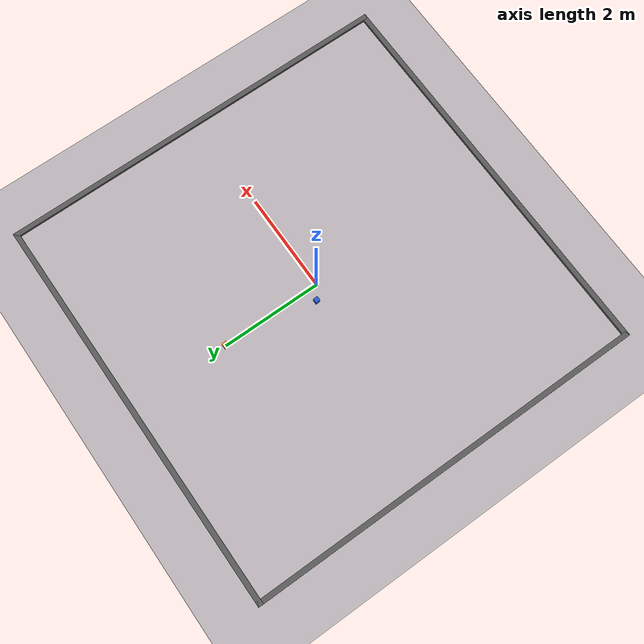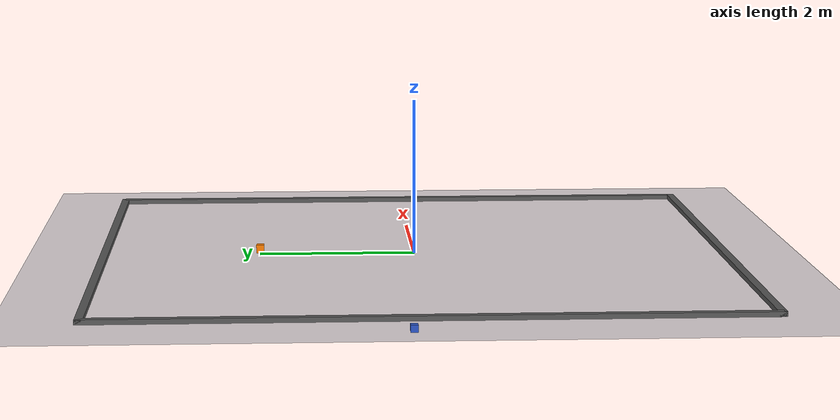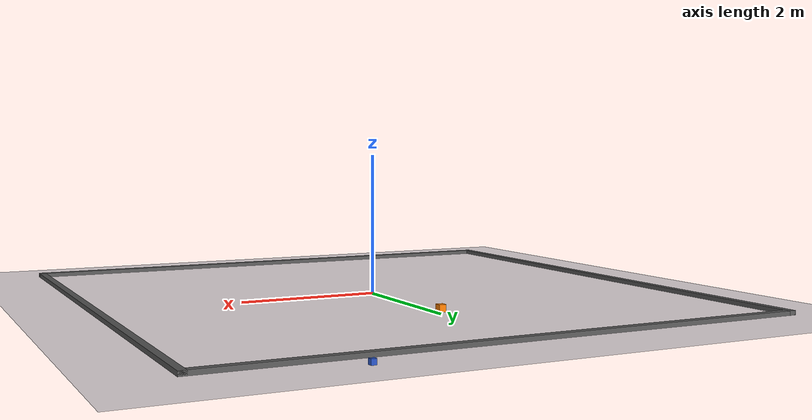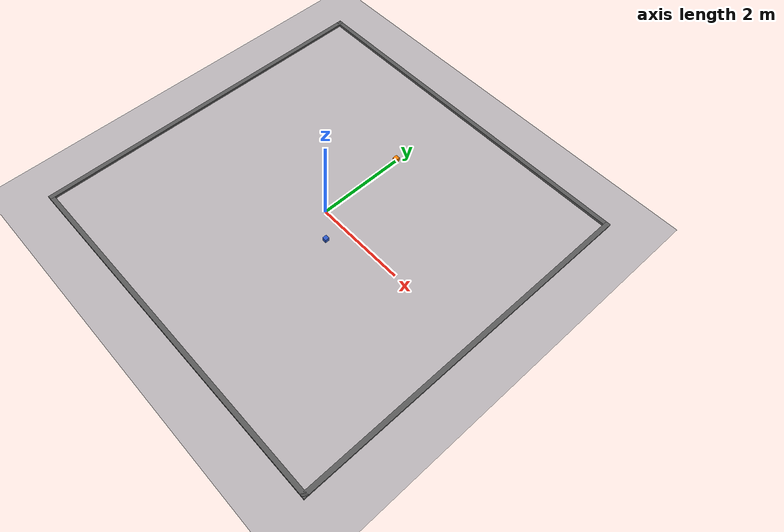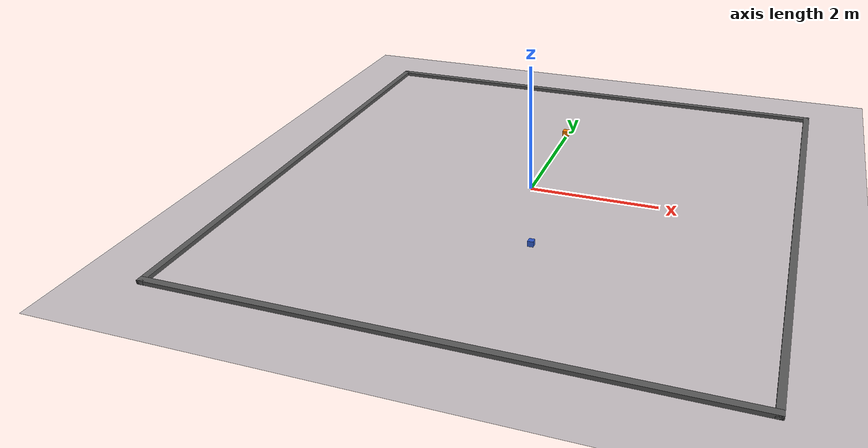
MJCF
<?xml version='1.0' encoding='utf-8'?>
<mujoco model="room">
  <statistic extent="5" center="0 0 0" />
  <visual>
    <headlight ambient=".4 .4 .4" diffuse=".8 .8 .8" specular="0.1 0.1 0.1" />
    <map znear="0.01" />
    <quality shadowsize="2048" />
  </visual>
  <asset>
    <texture type="skybox" builtin="gradient" rgb1="0.3 0.5 0.7" rgb2="0 0 0" width="512" height="3072" />
    <texture type="2d" name="groundplane" builtin="checker" mark="edge" rgb1="0.2 0.3 0.4" rgb2="0.1 0.2 0.3" markrgb="0.8 0.8 0.8" width="300" height="300" />
    <material name="groundplane" texture="groundplane" texuniform="true" texrepeat="5 5" reflectance="0.2" />
  </asset>
  <worldbody>
    <light directional="true" diffuse=".8 .8 .8" pos="0 0 10" dir="0 0 -1" />
    <geom name="floor" type="plane" size="5 5 0.1" material="groundplane" />
    <!-- Arena curbs at ±4m (short lips to contain the robot) -->
    <geom name="curb_north" type="box" size="4.05 0.05 0.03" pos="0 4 0.03" rgba="0.35 0.35 0.35 1.0" />
    <geom name="curb_south" type="box" size="4.05 0.05 0.03" pos="0 -4 0.03" rgba="0.35 0.35 0.35 1.0" />
    <geom name="curb_east" type="box" size="0.05 4.05 0.03" pos="4 0 0.03" rgba="0.35 0.35 0.35 1.0" />
    <geom name="curb_west" type="box" size="0.05 4.05 0.03" pos="-4 0 0.03" rgba="0.35 0.35 0.35 1.0" />
    <body name="target" mocap="true" pos="0 2 0.08">
      <geom name="target_cube" type="box" size="0.05 0.05 0.05" rgba="1.0 0.5 0.0 1.0" contype="0" conaffinity="0" />
    </body>
    <body name="distractor_0" mocap="true" pos="0 0 -1">
      <geom name="distractor_0_cube" type="box" size="0.05 0.05 0.05" rgba="0.2 0.4 1.0 1.0" contype="0" conaffinity="0" />
    </body>
    <body name="distractor_1" mocap="true" pos="0 0 -1">
      <geom name="distractor_1_cube" type="box" size="0.05 0.05 0.05" rgba="0.2 0.9 0.3 1.0" contype="0" conaffinity="0" />
    </body>
    <body name="distractor_2" mocap="true" pos="0 0 -1">
      <geom name="distractor_2_cube" type="box" size="0.05 0.05 0.05" rgba="0.9 0.2 0.2 1.0" contype="0" conaffinity="0" />
    </body>
    <body name="distractor_3" mocap="true" pos="0 0 -1">
      <geom name="distractor_3_cube" type="box" size="0.05 0.05 0.05" rgba="0.7 0.3 0.9 1.0" contype="0" conaffinity="0" />
    </body>
    <!-- Obstacle slots are injected via MjSpec at load time (SceneComposer.prepare_spec).
         No pre-allocated bodies needed here. -->
  </worldbody>
</mujoco>
